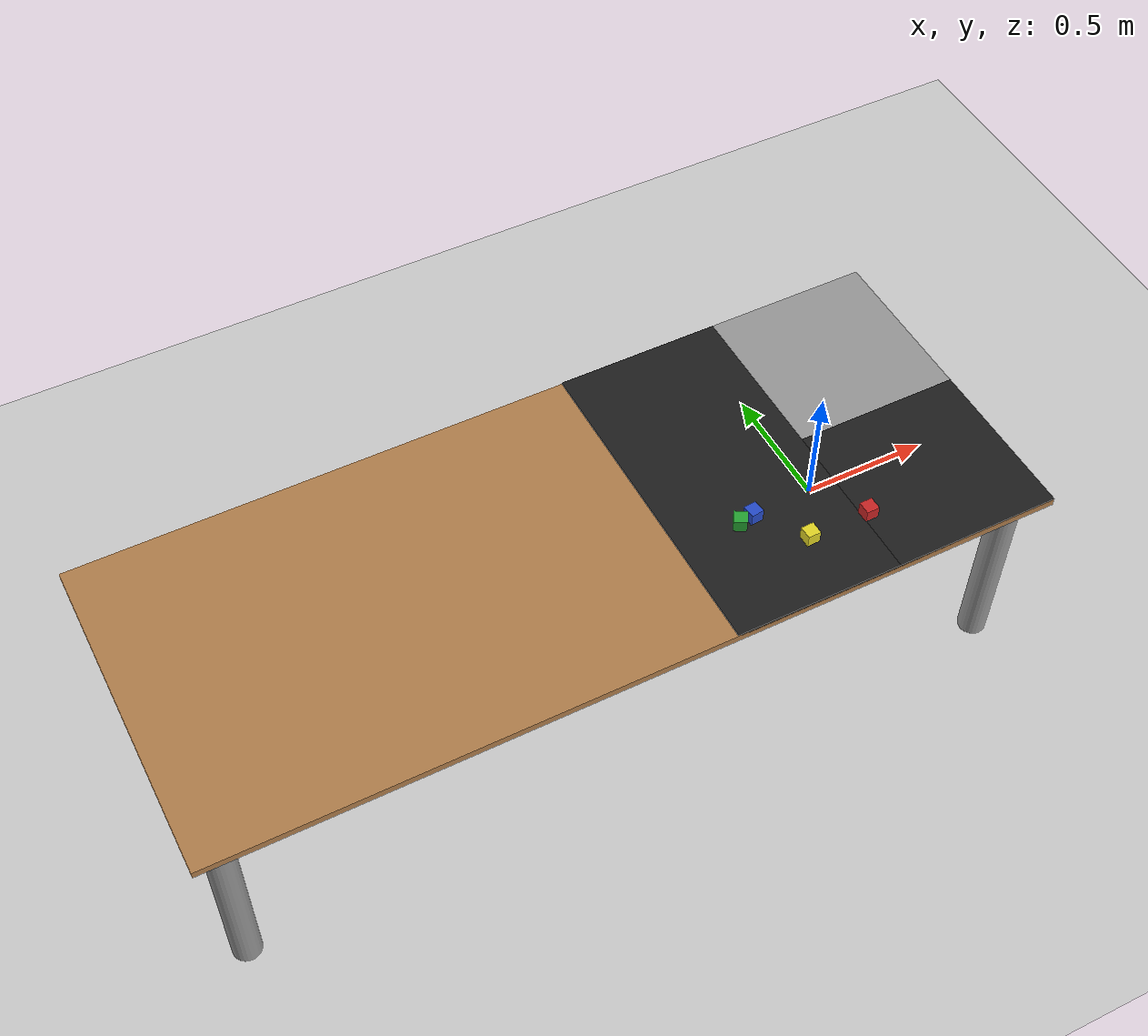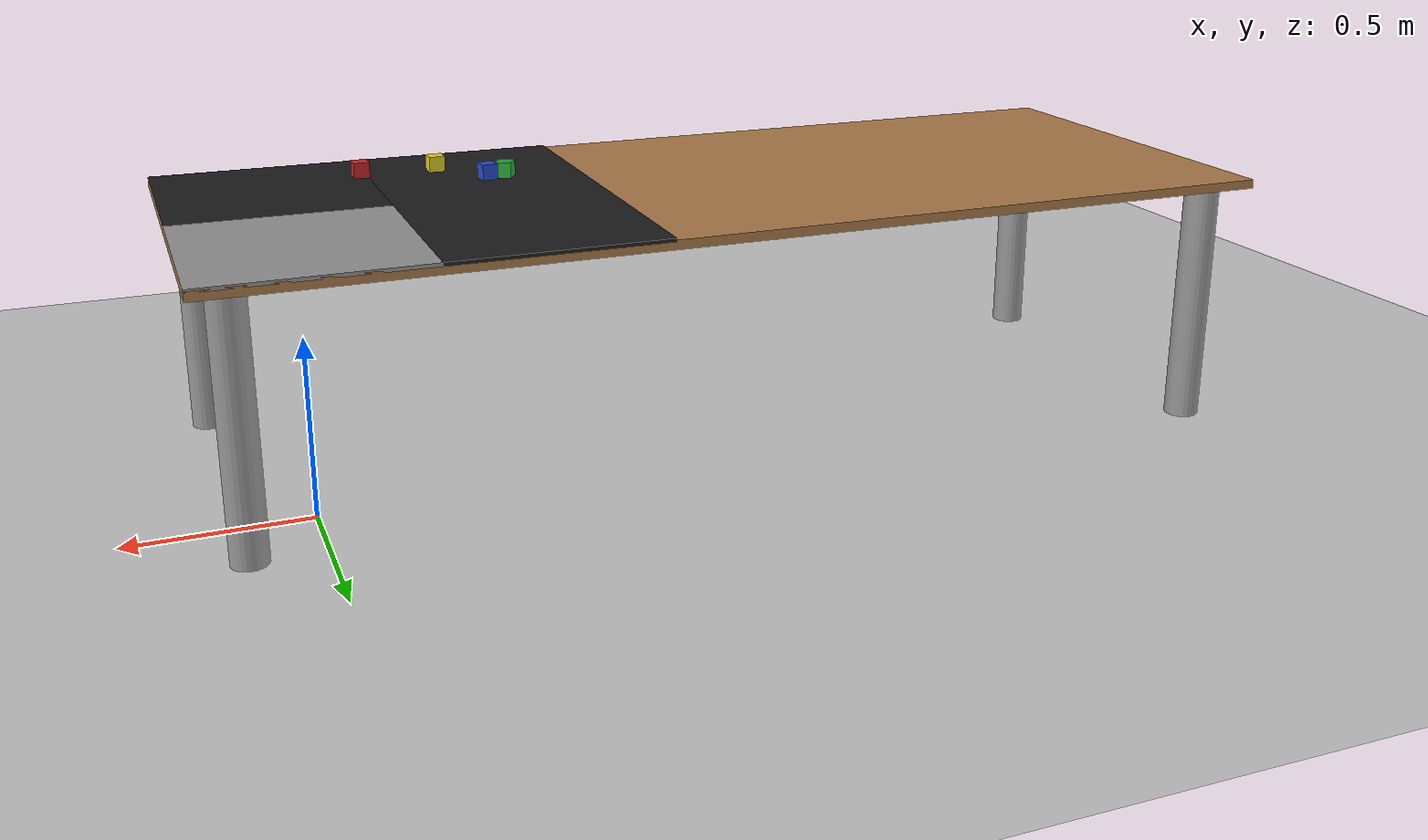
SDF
<sdf version="1.6">
 <world name="default">
  <light name="sun" type="directional">
   <pose>0 0 10 0 -0 0</pose>
   <diffuse>0.8 0.8 0.8 1</diffuse>
   <specular>0.1 0.1 0.1 1</specular>
   <attenuation>
    <range>1000</range>
    <constant>0.9</constant>
    <linear>0.01</linear>
    <quadratic>0.001</quadratic>
   </attenuation>
   <direction>-0.5 0.5 -1</direction>
  </light>
  <model name="ground_plane">
   <static>1</static>
   <link name="link">
    <collision name="collision">
     <geometry><plane><normal>0 0 1</normal><size>100 100</size></plane></geometry>
     <surface><friction><ode><mu>100</mu><mu2>50</mu2></ode></friction></surface>
    </collision>
    <visual name="visual">
     <cast_shadows>0</cast_shadows>
     <geometry><plane><normal>0 0 1</normal><size>100 100</size></plane></geometry>
     <material>
      <script><uri>file://media/materials/scripts/gazebo.material</uri><name>Gazebo/Grey</name></script>
     </material>
    </visual>
   </link>
  </model>
  <gravity>0 0 -9.8</gravity>
  <magnetic_field>6e-06 2.3e-05 -4.2e-05</magnetic_field>
  <atmosphere type="adiabatic"/>
  <physics name="default_physics" default="0" type="ode">
   <max_step_size>0.001</max_step_size>
   <real_time_factor>1</real_time_factor>
   <real_time_update_rate>1000</real_time_update_rate>
  </physics>
  <scene><ambient>0.4 0.4 0.4 1</ambient><background>0.7 0.7 0.7 1</background><shadows>1</shadows></scene>
  <spherical_coordinates>
   <surface_model>EARTH_WGS84</surface_model>
   <latitude_deg>0</latitude_deg>
   <longitude_deg>0</longitude_deg>
   <elevation>0</elevation>
   <heading_deg>0</heading_deg>
  </spherical_coordinates>
  <model name="table_custom_4_2">
   <link name="link">
    <inertial>
     <inertia><ixx>10</ixx><ixy>0</ixy><ixz>0</ixz><iyy>10</iyy><iyz>0</iyz><izz>10</izz></inertia>
     <mass>10</mass>
    </inertial>
    <self_collide>1</self_collide>
    <visual name="ModelPreview_20::link::visual_7">
     <pose>0.6 0 0.746 0 -0 0</pose>
     <geometry><box><size>0.6 1.2 0.01</size></box></geometry>
     <material>
      <script><uri>file://media/materials/scripts/gazebo.material</uri><name>Gazebo/Black</name></script>
      <ambient>0 0 0 1</ambient>
      <diffuse>0 0 0 1</diffuse>
      <specular>0.2 0.2 0.2 1</specular>
      <emissive>0 0 0 1</emissive>
      <shader type="vertex"><normal_map>__default__</normal_map></shader>
     </material>
    </visual>
    <visual name="back_right_leg">
     <pose>-1.4 -0.5 0.36 0 -0 0</pose>
     <geometry><cylinder><radius>0.05</radius><length>0.72</length></cylinder></geometry>
     <material>
      <script><uri>file://media/materials/scripts/gazebo.material</uri><name>Gazebo/Grey</name></script>
      <ambient>0.3 0.3 0.3 1</ambient>
      <diffuse>0.7 0.7 0.7 1</diffuse>
      <specular>0.01 0.01 0.01 1</specular>
      <emissive>0 0 0 1</emissive>
      <shader type="vertex"><normal_map>__default__</normal_map></shader>
     </material>
    </visual>
    <visual name="back_left_leg">
     <pose>-1.4 0.5 0.36 0 -0 0</pose>
     <geometry><cylinder><radius>0.05</radius><length>0.72</length></cylinder></geometry>
     <material>
      <script><uri>file://media/materials/scripts/gazebo.material</uri><name>Gazebo/Grey</name></script>
      <ambient>0.3 0.3 0.3 1</ambient>
      <diffuse>0.7 0.7 0.7 1</diffuse>
      <specular>0.01 0.01 0.01 1</specular>
      <emissive>0 0 0 1</emissive>
      <shader type="vertex"><normal_map>__default__</normal_map></shader>
     </material>
    </visual>
    <visual name="visual1">
     <pose>0 0 0.733 0 -0 0</pose>
     <geometry><box><size>3 1.2 0.026</size></box></geometry>
     <material>
      <script><uri>file://media/materials/scripts/gazebo.material</uri><name>Gazebo/Wood</name></script>
      <ambient>1 1 1 1</ambient>
      <diffuse>1 1 1 1</diffuse>
      <specular>0.2 0.2 0.2 1</specular>
      <emissive>0 0 0 1</emissive>
      <shader type="vertex"><normal_map>__default__</normal_map></shader>
     </material>
    </visual>
    <visual name="ModelPreview_4::link::visual_5">
     <pose>1.2 0.3 0.746 0 -0 0</pose>
     <geometry><box><size>0.6 0.6 0.01</size></box></geometry>
     <material>
      <script><uri>file://media/materials/scripts/gazebo.material</uri><name>Gazebo/Grey</name></script>
      <ambient>0.3 0.3 0.3 1</ambient>
      <diffuse>0.7 0.7 0.7 1</diffuse>
      <specular>0.01 0.01 0.01 1</specular>
      <emissive>0 0 0 1</emissive>
      <shader type="vertex"><normal_map>__default__</normal_map></shader>
     </material>
    </visual>
    <visual name="front_right_leg">
     <pose>1.4 -0.5 0.36 0 -0 0</pose>
     <geometry><cylinder><radius>0.05</radius><length>0.72</length></cylinder></geometry>
     <material>
      <script><uri>file://media/materials/scripts/gazebo.material</uri><name>Gazebo/Grey</name></script>
      <ambient>0.3 0.3 0.3 1</ambient>
      <diffuse>0.7 0.7 0.7 1</diffuse>
      <specular>0.01 0.01 0.01 1</specular>
      <emissive>0 0 0 1</emissive>
      <shader type="vertex"><normal_map>__default__</normal_map></shader>
     </material>
    </visual>
    <visual name="front_left_leg">
     <pose>1.4 0.5 0.36 0 -0 0</pose>
     <geometry><cylinder><radius>0.05</radius><length>0.72</length></cylinder></geometry>
     <material>
      <script><uri>file://media/materials/scripts/gazebo.material</uri><name>Gazebo/Grey</name></script>
      <ambient>0.3 0.3 0.3 1</ambient>
      <diffuse>0.7 0.7 0.7 1</diffuse>
      <specular>0.01 0.01 0.01 1</specular>
      <emissive>0 0 0 1</emissive>
      <shader type="vertex"><normal_map>__default__</normal_map></shader>
     </material>
    </visual>
    <visual name="ModelPreview_20::link::visual_6">
     <pose>1.2 -0.3 0.746 0 -0 0</pose>
     <geometry><box><size>0.6 0.6 0.01</size></box></geometry>
     <material>
      <script><uri>file://media/materials/scripts/gazebo.material</uri><name>Gazebo/Black</name></script>
      <ambient>0 0 0 1</ambient>
      <diffuse>0 0 0 1</diffuse>
      <specular>0.2 0.2 0.2 1</specular>
      <emissive>0 0 0 1</emissive>
      <shader type="vertex"><normal_map>__default__</normal_map></shader>
     </material>
    </visual>
    <collision name="collision_7">
     <pose>0.6 0 0.746 0 -0 0</pose>
     <geometry><box><size>0.6 1.2 0.01</size></box></geometry>
     <surface>
      <friction>
       <ode><mu>1</mu><mu2>1</mu2><fdir1>0 0 0</fdir1><slip1>0</slip1><slip2>0</slip2></ode>
       <torsional>
        <coefficient>1</coefficient>
        <patch_radius>0</patch_radius>
        <surface_radius>0</surface_radius>
        <use_patch_radius>1</use_patch_radius>
        <ode><slip>0</slip></ode>
       </torsional>
      </friction>
      <bounce><restitution_coefficient>0</restitution_coefficient><threshold>1e+06</threshold></bounce>
      <contact>
       <collide_without_contact>0</collide_without_contact>
       <collide_without_contact_bitmask>1</collide_without_contact_bitmask>
       <collide_bitmask>1</collide_bitmask>
       <ode>
        <soft_cfm>0</soft_cfm>
        <soft_erp>0.2</soft_erp>
        <kp>1e+13</kp>
        <kd>1</kd>
        <max_vel>0.01</max_vel>
        <min_depth>0</min_depth>
       </ode>
       <bullet>
        <split_impulse>1</split_impulse>
        <split_impulse_penetration_threshold>-0.01</split_impulse_penetration_threshold>
        <soft_cfm>0</soft_cfm>
        <soft_erp>0.2</soft_erp>
        <kp>1e+13</kp>
        <kd>1</kd>
       </bullet>
      </contact>
     </surface>
    </collision>
    <collision name="surface">
     <pose>0 0 0.733 0 -0 0</pose>
     <geometry><box><size>3 1.2 0.026</size></box></geometry>
     <surface>
      <friction>
       <ode><mu>0.6</mu><mu2>0.6</mu2><fdir1>0 0 0</fdir1><slip1>0</slip1><slip2>0</slip2></ode>
       <torsional>
        <coefficient>1</coefficient>
        <patch_radius>0</patch_radius>
        <surface_radius>0</surface_radius>
        <use_patch_radius>1</use_patch_radius>
        <ode><slip>0</slip></ode>
       </torsional>
      </friction>
      <bounce><restitution_coefficient>0</restitution_coefficient><threshold>1e+06</threshold></bounce>
      <contact>
       <collide_without_contact>0</collide_without_contact>
       <collide_without_contact_bitmask>1</collide_without_contact_bitmask>
       <collide_bitmask>1</collide_bitmask>
       <ode>
        <soft_cfm>0</soft_cfm>
        <soft_erp>0.2</soft_erp>
        <kp>1e+13</kp>
        <kd>1</kd>
        <max_vel>0.01</max_vel>
        <min_depth>0</min_depth>
       </ode>
       <bullet>
        <split_impulse>1</split_impulse>
        <split_impulse_penetration_threshold>-0.01</split_impulse_penetration_threshold>
        <soft_cfm>0</soft_cfm>
        <soft_erp>0.2</soft_erp>
        <kp>1e+13</kp>
        <kd>1</kd>
       </bullet>
      </contact>
     </surface>
    </collision>
    <collision name="collision_5">
     <pose>1.2 0.3 0.746 0 -0 0</pose>
     <geometry><box><size>0.6 0.6 0.01</size></box></geometry>
     <surface>
      <friction>
       <ode><mu>1</mu><mu2>1</mu2><fdir1>0 0 0</fdir1><slip1>0</slip1><slip2>0</slip2></ode>
       <torsional>
        <coefficient>1</coefficient>
        <patch_radius>0</patch_radius>
        <surface_radius>0</surface_radius>
        <use_patch_radius>1</use_patch_radius>
        <ode><slip>0</slip></ode>
       </torsional>
      </friction>
      <bounce><restitution_coefficient>0</restitution_coefficient><threshold>1e+06</threshold></bounce>
      <contact>
       <collide_without_contact>0</collide_without_contact>
       <collide_without_contact_bitmask>1</collide_without_contact_bitmask>
       <collide_bitmask>1</collide_bitmask>
       <ode>
        <soft_cfm>0</soft_cfm>
        <soft_erp>0.2</soft_erp>
        <kp>1e+13</kp>
        <kd>1</kd>
        <max_vel>0.01</max_vel>
        <min_depth>0</min_depth>
       </ode>
       <bullet>
        <split_impulse>1</split_impulse>
        <split_impulse_penetration_threshold>-0.01</split_impulse_penetration_threshold>
        <soft_cfm>0</soft_cfm>
        <soft_erp>0.2</soft_erp>
        <kp>1e+13</kp>
        <kd>1</kd>
       </bullet>
      </contact>
     </surface>
    </collision>
    <collision name="collision_6">
     <pose>1.2 -0.3 0.746 0 -0 0</pose>
     <geometry><box><size>0.6 0.6 0.01</size></box></geometry>
     <surface>
      <friction>
       <ode><mu>1</mu><mu2>1</mu2><fdir1>0 0 0</fdir1><slip1>0</slip1><slip2>0</slip2></ode>
       <torsional>
        <coefficient>1</coefficient>
        <patch_radius>0</patch_radius>
        <surface_radius>0</surface_radius>
        <use_patch_radius>1</use_patch_radius>
        <ode><slip>0</slip></ode>
       </torsional>
      </friction>
      <bounce><restitution_coefficient>0</restitution_coefficient><threshold>1e+06</threshold></bounce>
      <contact>
       <collide_without_contact>0</collide_without_contact>
       <collide_without_contact_bitmask>1</collide_without_contact_bitmask>
       <collide_bitmask>1</collide_bitmask>
       <ode>
        <soft_cfm>0</soft_cfm>
        <soft_erp>0.2</soft_erp>
        <kp>1e+13</kp>
        <kd>1</kd>
        <max_vel>0.01</max_vel>
        <min_depth>0</min_depth>
       </ode>
       <bullet>
        <split_impulse>1</split_impulse>
        <split_impulse_penetration_threshold>-0.01</split_impulse_penetration_threshold>
        <soft_cfm>0</soft_cfm>
        <soft_erp>0.2</soft_erp>
        <kp>1e+13</kp>
        <kd>1</kd>
       </bullet>
      </contact>
     </surface>
    </collision>
    <collision name="front_left_leg">
     <pose>1.4 0.5 0.36 0 -0 0</pose>
     <geometry><cylinder><radius>0.05</radius><length>0.72</length></cylinder></geometry>
     <surface>
      <friction>
       <ode><mu>1</mu><mu2>1</mu2><fdir1>0 0 0</fdir1><slip1>0</slip1><slip2>0</slip2></ode>
       <torsional>
        <coefficient>1</coefficient>
        <patch_radius>0</patch_radius>
        <surface_radius>0</surface_radius>
        <use_patch_radius>1</use_patch_radius>
        <ode><slip>0</slip></ode>
       </torsional>
      </friction>
      <bounce><restitution_coefficient>0</restitution_coefficient><threshold>1e+06</threshold></bounce>
      <contact>
       <collide_without_contact>0</collide_without_contact>
       <collide_without_contact_bitmask>1</collide_without_contact_bitmask>
       <collide_bitmask>1</collide_bitmask>
       <ode>
        <soft_cfm>0</soft_cfm>
        <soft_erp>0.2</soft_erp>
        <kp>1e+13</kp>
        <kd>1</kd>
        <max_vel>0.01</max_vel>
        <min_depth>0</min_depth>
       </ode>
       <bullet>
        <split_impulse>1</split_impulse>
        <split_impulse_penetration_threshold>-0.01</split_impulse_penetration_threshold>
        <soft_cfm>0</soft_cfm>
        <soft_erp>0.2</soft_erp>
        <kp>1e+13</kp>
        <kd>1</kd>
       </bullet>
      </contact>
     </surface>
    </collision>
    <collision name="front_right_leg">
     <pose>1.4 -0.5 0.36 0 -0 0</pose>
     <geometry><cylinder><radius>0.05</radius><length>0.72</length></cylinder></geometry>
     <surface>
      <friction>
       <ode><mu>1</mu><mu2>1</mu2><fdir1>0 0 0</fdir1><slip1>0</slip1><slip2>0</slip2></ode>
       <torsional>
        <coefficient>1</coefficient>
        <patch_radius>0</patch_radius>
        <surface_radius>0</surface_radius>
        <use_patch_radius>1</use_patch_radius>
        <ode><slip>0</slip></ode>
       </torsional>
      </friction>
      <bounce><restitution_coefficient>0</restitution_coefficient><threshold>1e+06</threshold></bounce>
      <contact>
       <collide_without_contact>0</collide_without_contact>
       <collide_without_contact_bitmask>1</collide_without_contact_bitmask>
       <collide_bitmask>1</collide_bitmask>
       <ode>
        <soft_cfm>0</soft_cfm>
        <soft_erp>0.2</soft_erp>
        <kp>1e+13</kp>
        <kd>1</kd>
        <max_vel>0.01</max_vel>
        <min_depth>0</min_depth>
       </ode>
       <bullet>
        <split_impulse>1</split_impulse>
        <split_impulse_penetration_threshold>-0.01</split_impulse_penetration_threshold>
        <soft_cfm>0</soft_cfm>
        <soft_erp>0.2</soft_erp>
        <kp>1e+13</kp>
        <kd>1</kd>
       </bullet>
      </contact>
     </surface>
    </collision>
    <collision name="back_right_leg">
     <pose>-1.4 -0.5 0.36 0 -0 0</pose>
     <geometry><cylinder><radius>0.05</radius><length>0.72</length></cylinder></geometry>
     <surface>
      <friction>
       <ode><mu>1</mu><mu2>1</mu2><fdir1>0 0 0</fdir1><slip1>0</slip1><slip2>0</slip2></ode>
       <torsional>
        <coefficient>1</coefficient>
        <patch_radius>0</patch_radius>
        <surface_radius>0</surface_radius>
        <use_patch_radius>1</use_patch_radius>
        <ode><slip>0</slip></ode>
       </torsional>
      </friction>
      <bounce><restitution_coefficient>0</restitution_coefficient><threshold>1e+06</threshold></bounce>
      <contact>
       <collide_without_contact>0</collide_without_contact>
       <collide_without_contact_bitmask>1</collide_without_contact_bitmask>
       <collide_bitmask>1</collide_bitmask>
       <ode>
        <soft_cfm>0</soft_cfm>
        <soft_erp>0.2</soft_erp>
        <kp>1e+13</kp>
        <kd>1</kd>
        <max_vel>0.01</max_vel>
        <min_depth>0</min_depth>
       </ode>
       <bullet>
        <split_impulse>1</split_impulse>
        <split_impulse_penetration_threshold>-0.01</split_impulse_penetration_threshold>
        <soft_cfm>0</soft_cfm>
        <soft_erp>0.2</soft_erp>
        <kp>1e+13</kp>
        <kd>1</kd>
       </bullet>
      </contact>
     </surface>
    </collision>
    <collision name="back_left_leg">
     <pose>-1.4 0.5 0.36 0 -0 0</pose>
     <geometry><cylinder><radius>0.05</radius><length>0.72</length></cylinder></geometry>
     <surface>
      <friction>
       <ode><mu>1</mu><mu2>1</mu2><fdir1>0 0 0</fdir1><slip1>0</slip1><slip2>0</slip2></ode>
       <torsional>
        <coefficient>1</coefficient>
        <patch_radius>0</patch_radius>
        <surface_radius>0</surface_radius>
        <use_patch_radius>1</use_patch_radius>
        <ode><slip>0</slip></ode>
       </torsional>
      </friction>
      <bounce><restitution_coefficient>0</restitution_coefficient><threshold>1e+06</threshold></bounce>
      <contact>
       <collide_without_contact>0</collide_without_contact>
       <collide_without_contact_bitmask>1</collide_without_contact_bitmask>
       <collide_bitmask>1</collide_bitmask>
       <ode>
        <soft_cfm>0</soft_cfm>
        <soft_erp>0.2</soft_erp>
        <kp>1e+13</kp>
        <kd>1</kd>
        <max_vel>0.01</max_vel>
        <min_depth>0</min_depth>
       </ode>
       <bullet>
        <split_impulse>1</split_impulse>
        <split_impulse_penetration_threshold>-0.01</split_impulse_penetration_threshold>
        <soft_cfm>0</soft_cfm>
        <soft_erp>0.2</soft_erp>
        <kp>1e+13</kp>
        <kd>1</kd>
       </bullet>
      </contact>
     </surface>
    </collision>
   </link>
   <static>0</static>
   <pose>-1.20389 -0.298418 -2e-05 0 1.5e-05 0.001515</pose>
  </model>
  <model name="cube_custom_green_0">
   <link name="link">
    <pose>-0 -0 0.025 0 -0 0</pose>
    <inertial>
     <mass>0.0565</mass>
     <inertia>
      <ixx>2.35e-06</ixx>
      <ixy>0</ixy>
      <ixz>0</ixz>
      <iyy>2.35e-06</iyy>
      <iyz>0</iyz>
      <izz>2.35e-06</izz>
     </inertia>
    </inertial>
    <visual name="visual">
     <geometry><box><size>0.046 0.046 0.046</size></box></geometry>
     <material>
      <script><uri>file://media/materials/scripts/gazebo.material</uri><name>Gazebo/Green</name></script>
      <ambient>0 1 0 0</ambient>
      <diffuse>0 1 0 0</diffuse>
      <specular>0.2 0.2 0.2 1</specular>
      <emissive>0 0 0 1</emissive>
      <shader type="vertex"><normal_map>__default__</normal_map></shader>
     </material>
    </visual>
    <collision name="collision">
     <geometry><box><size>0.046 0.046 0.046</size></box></geometry>
     <surface>
      <friction>
       <ode><mu>1</mu><mu2>1</mu2><fdir1>0 0 0</fdir1><slip1>0</slip1><slip2>0</slip2></ode>
       <torsional>
        <coefficient>10</coefficient>
        <patch_radius>0</patch_radius>
        <surface_radius>0.05</surface_radius>
        <use_patch_radius>0</use_patch_radius>
        <ode><slip>0</slip></ode>
       </torsional>
      </friction>
      <bounce><restitution_coefficient>0</restitution_coefficient><threshold>1e+06</threshold></bounce>
      <contact>
       <collide_without_contact>0</collide_without_contact>
       <collide_without_contact_bitmask>1</collide_without_contact_bitmask>
       <collide_bitmask>1</collide_bitmask>
       <ode>
        <soft_cfm>0</soft_cfm>
        <soft_erp>0.2</soft_erp>
        <kp>100000</kp>
        <kd>1</kd>
        <max_vel>1</max_vel>
        <min_depth>0.001</min_depth>
       </ode>
       <bullet>
        <split_impulse>1</split_impulse>
        <split_impulse_penetration_threshold>-0.01</split_impulse_penetration_threshold>
        <soft_cfm>0</soft_cfm>
        <soft_erp>0.2</soft_erp>
        <kp>100000</kp>
        <kd>1</kd>
       </bullet>
      </contact>
     </surface>
    </collision>
   </link>
   <static>0</static>
   <pose>-0.679123 -0.522582 0.748974 -2.1e-05 -0.000202 -0.540925</pose>
  </model>
  <model name="cube_custom_blue_1">
   <link name="link">
    <pose>-0 0 0.025 0 -0 0</pose>
    <inertial>
     <mass>0.0565</mass>
     <inertia>
      <ixx>2.35e-06</ixx>
      <ixy>0</ixy>
      <ixz>0</ixz>
      <iyy>2.35e-06</iyy>
      <iyz>0</iyz>
      <izz>2.35e-06</izz>
     </inertia>
    </inertial>
    <visual name="visual">
     <geometry><box><size>0.046 0.046 0.046</size></box></geometry>
     <material>
      <script><uri>file://media/materials/scripts/gazebo.material</uri><name>Gazebo/Blue</name></script>
      <ambient>0 0 1 0</ambient>
      <diffuse>0 0 1 0</diffuse>
      <specular>0.2 0.2 0.2 1</specular>
      <emissive>0 0 0 1</emissive>
      <shader type="vertex"><normal_map>__default__</normal_map></shader>
     </material>
    </visual>
    <collision name="collision">
     <geometry><box><size>0.046 0.046 0.046</size></box></geometry>
     <surface>
      <friction>
       <ode><mu>1</mu><mu2>1</mu2><fdir1>0 0 0</fdir1><slip1>0</slip1><slip2>0</slip2></ode>
       <torsional>
        <coefficient>10</coefficient>
        <patch_radius>0</patch_radius>
        <surface_radius>0.05</surface_radius>
        <use_patch_radius>0</use_patch_radius>
        <ode><slip>0</slip></ode>
       </torsional>
      </friction>
      <bounce><restitution_coefficient>0</restitution_coefficient><threshold>1e+06</threshold></bounce>
      <contact>
       <collide_without_contact>0</collide_without_contact>
       <collide_without_contact_bitmask>1</collide_without_contact_bitmask>
       <collide_bitmask>1</collide_bitmask>
       <ode>
        <soft_cfm>0</soft_cfm>
        <soft_erp>0.2</soft_erp>
        <kp>100000</kp>
        <kd>1</kd>
        <max_vel>1</max_vel>
        <min_depth>0.001</min_depth>
       </ode>
       <bullet>
        <split_impulse>1</split_impulse>
        <split_impulse_penetration_threshold>-0.01</split_impulse_penetration_threshold>
        <soft_cfm>0</soft_cfm>
        <soft_erp>0.2</soft_erp>
        <kp>100000</kp>
        <kd>1</kd>
       </bullet>
      </contact>
     </surface>
    </collision>
   </link>
   <static>0</static>
   <pose>-0.624531 -0.513904 0.74898 -2.4e-05 0.000215 0.109677</pose>
  </model>
  <model name="cube_custom_yellow_1">
   <link name="link">
    <pose>-0 0 0.025 0 -0 0</pose>
    <inertial>
     <mass>0.0565</mass>
     <inertia>
      <ixx>2.35e-06</ixx>
      <ixy>0</ixy>
      <ixz>0</ixz>
      <iyy>2.35e-06</iyy>
      <iyz>0</iyz>
      <izz>2.35e-06</izz>
     </inertia>
    </inertial>
    <visual name="visual">
     <geometry><box><size>0.046 0.046 0.046</size></box></geometry>
     <material>
      <script><uri>file://media/materials/scripts/gazebo.material</uri><name>Gazebo/Yellow</name></script>
      <ambient>1 1 0 0</ambient>
      <diffuse>1 1 0 0</diffuse>
      <specular>0.2 0.2 0.2 1</specular>
      <emissive>0 0 0 1</emissive>
      <shader type="vertex"><normal_map>__default__</normal_map></shader>
     </material>
    </visual>
    <collision name="collision">
     <geometry><box><size>0.046 0.046 0.046</size></box></geometry>
     <surface>
      <friction>
       <ode><mu>1</mu><mu2>1</mu2><fdir1>0 0 0</fdir1><slip1>0</slip1><slip2>0</slip2></ode>
       <torsional>
        <coefficient>10</coefficient>
        <patch_radius>0</patch_radius>
        <surface_radius>0.05</surface_radius>
        <use_patch_radius>0</use_patch_radius>
        <ode><slip>0</slip></ode>
       </torsional>
      </friction>
      <bounce><restitution_coefficient>0</restitution_coefficient><threshold>1e+06</threshold></bounce>
      <contact>
       <collide_without_contact>0</collide_without_contact>
       <collide_without_contact_bitmask>1</collide_without_contact_bitmask>
       <collide_bitmask>1</collide_bitmask>
       <ode>
        <soft_cfm>0</soft_cfm>
        <soft_erp>0.2</soft_erp>
        <kp>100000</kp>
        <kd>1</kd>
        <max_vel>1</max_vel>
        <min_depth>0.001</min_depth>
       </ode>
       <bullet>
        <split_impulse>1</split_impulse>
        <split_impulse_penetration_threshold>-0.01</split_impulse_penetration_threshold>
        <soft_cfm>0</soft_cfm>
        <soft_erp>0.2</soft_erp>
        <kp>100000</kp>
        <kd>1</kd>
       </bullet>
      </contact>
     </surface>
    </collision>
   </link>
   <static>0</static>
   <pose>-0.506207 -0.673076 0.748974 -3e-05 -0.000157 0.024477</pose>
  </model>
  <model name="cube_custom_red">
   <link name="link">
    <pose>0 0 0.025 0 -0 0</pose>
    <inertial>
     <mass>0.565</mass>
     <inertia><ixx>0.00235</ixx><ixy>0</ixy><ixz>0</ixz><iyy>0.00235</iyy><iyz>0</iyz><izz>0.00235</izz></inertia>
    </inertial>
    <self_collide>1</self_collide>
    <visual name="visual">
     <geometry><box><size>0.046 0.046 0.046</size></box></geometry>
     <material>
      <script><uri>file://media/materials/scripts/gazebo.material</uri><name>Gazebo/Red</name></script>
      <ambient>1 0 0 0</ambient>
      <diffuse>1 0 0 0</diffuse>
      <specular>0.2 0.2 0.2 1</specular>
      <emissive>0 0 0 1</emissive>
      <shader type="vertex"><normal_map>__default__</normal_map></shader>
     </material>
    </visual>
    <collision name="collision">
     <geometry><box><size>0.046 0.046 0.046</size></box></geometry>
     <surface>
      <friction>
       <ode><mu>1</mu><mu2>1</mu2><fdir1>0 0 0</fdir1><slip1>0</slip1><slip2>0</slip2></ode>
       <torsional>
        <coefficient>10</coefficient>
        <patch_radius>0</patch_radius>
        <surface_radius>0.05</surface_radius>
        <use_patch_radius>0</use_patch_radius>
        <ode><slip>0</slip></ode>
       </torsional>
      </friction>
      <bounce><restitution_coefficient>0</restitution_coefficient><threshold>1e+06</threshold></bounce>
      <contact>
       <collide_without_contact>0</collide_without_contact>
       <collide_without_contact_bitmask>1</collide_without_contact_bitmask>
       <collide_bitmask>1</collide_bitmask>
       <ode>
        <soft_cfm>0</soft_cfm>
        <soft_erp>0.2</soft_erp>
        <kp>100000</kp>
        <kd>1</kd>
        <max_vel>1</max_vel>
        <min_depth>0.001</min_depth>
       </ode>
       <bullet>
        <split_impulse>1</split_impulse>
        <split_impulse_penetration_threshold>-0.01</split_impulse_penetration_threshold>
        <soft_cfm>0</soft_cfm>
        <soft_erp>0.2</soft_erp>
        <kp>100000</kp>
        <kd>1</kd>
       </bullet>
      </contact>
     </surface>
    </collision>
   </link>
   <static>0</static>
   <pose>-0.283562 -0.672691 0.748972 -9e-06 -0.000263 0.008589</pose>
  </model>
 </world>
</sdf>
